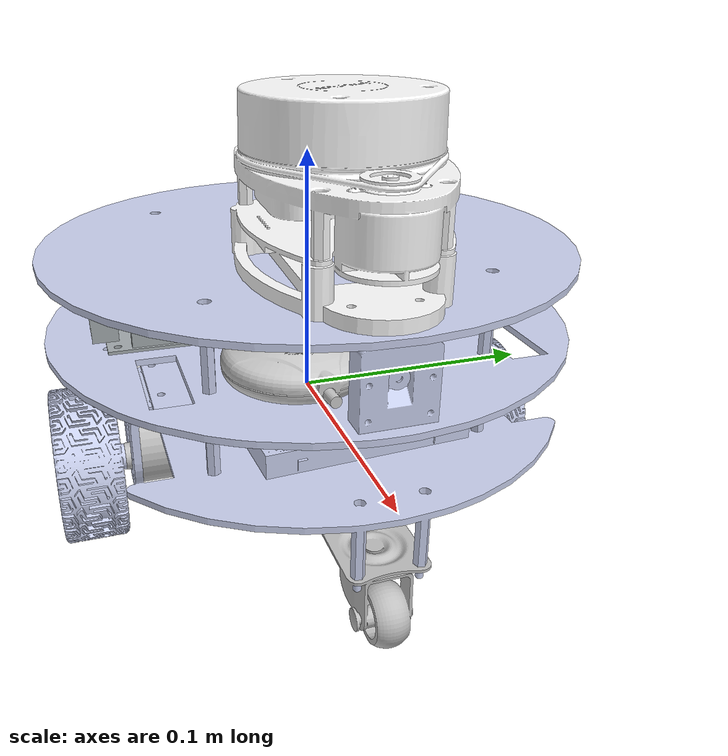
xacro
<?xml version="1.0"?>
<robot xmlns:xacro="http://www.ros.org/wiki/xacro"  name="robot">

    <xacro:arg name="use_ros2_control" default="true"/>
    <xacro:arg name="sim_mode" default="false"/>

    <xacro:include filename="robot_description.xacro" />

    <xacro:if value="$(arg use_ros2_control)">
        <xacro:include filename="ros2_control.xacro" />
    </xacro:if>

</robot>

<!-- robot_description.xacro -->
<robot name="robot" xmlns:xacro="http://www.ros.org/wiki/xacro">

  <xacro:arg name="use_ros2_control" default="true"/>

  <xacro:include filename="$(find articubot_one)/description/robot_gazebo.xacro"/>

  <link name="base_footprint"/>

  <joint name="base_footprint_joint" type="fixed">
    <parent link="base_link"/>
    <child  link="base_footprint"/>
  </joint>

  <link
    name="base_link">
    <inertial>
      <origin
        xyz="-0.00320325700418752 -0.000298446145225224 -0.00392644448822834"
        rpy="0 0 0" />
      <mass
        value="0.0892483031352582" />
      <inertia
        ixx="0.000109154524668164"
        ixy="1.2971814209627E-08"
        ixz="1.46872353030201E-21"
        iyy="0.000218725590023206"
        iyz="-1.82429330705674E-21"
        izz="0.000320633694603302" />
    </inertial>
    <visual>
      <origin
        xyz="0 0 0"
        rpy="0 0 0" />
      <geometry>
        <mesh
          filename="package://articubot_one/meshes/base_link.STL" />
      </geometry>
      <material
        name="">
        <color
          rgba="0.792156862745098 0.819607843137255 0.933333333333333 1" />
      </material>
    </visual>
    <collision>
      <origin
        xyz="0 0 0"
        rpy="0 0 0" />
      <geometry>
        <mesh
          filename="package://articubot_one/meshes/base_link.STL" />
      </geometry>
    </collision>
  </link>
  <link
    name="l298n_link">
    <inertial>
      <origin
        xyz="0.000169098511339833 0.000545238330684975 0.0049192803054399"
        rpy="0 0 0" />
      <mass
        value="0.00934758418679701" />
      <inertia
        ixx="7.85478690330871E-07"
        ixy="4.09731030308566E-11"
        ixz="-5.03579222262385E-08"
        iyy="6.95101789626241E-07"
        iyz="-1.30005939491941E-10"
        izz="1.11874278111628E-06" />
    </inertial>
    <visual>
      <origin
        xyz="0 0 0"
        rpy="0 0 0" />
      <geometry>
        <mesh
          filename="package://articubot_one/meshes/l298n_link.STL" />
      </geometry>
      <material
        name="">
        <color
          rgba="0.298039215686275 0.298039215686275 0.298039215686275 1" />
      </material>
    </visual>
    <collision>
      <origin
        xyz="0 0 0"
        rpy="0 0 0" />
      <geometry>
        <mesh
          filename="package://articubot_one/meshes/l298n_link.STL" />
      </geometry>
    </collision>
  </link>
  <joint
    name="l298n_base_joint"
    type="fixed">
    <origin
      xyz="-0.0123610130121511 0.00695937246571647 0.0015"
      rpy="0 0 0" />
    <parent
      link="base_link" />
    <child
      link="l298n_link" />
    <axis
      xyz="0 0 0" />
  </joint>
  <link
    name="battery_link">
    <inertial>
      <origin
        xyz="0 -4.55364912443912E-18 -0.01"
        rpy="0 0 0" />
      <mass
        value="0.0809999999999999" />
      <inertia
        ixx="5.73748819135092E-05"
        ixy="-6.95864226468309E-08"
        ixz="-3.22231335207523E-22"
        iyy="1.63688680864907E-05"
        iyz="-4.80752750101142E-22"
        izz="6.83437499999999E-05" />
    </inertial>
    <visual>
      <origin
        xyz="0 0 0"
        rpy="0 0 0" />
      <geometry>
        <mesh
          filename="package://articubot_one/meshes/battery_link.STL" />
      </geometry>
      <material
        name="">
        <color
          rgba="0.792156862745098 0.819607843137255 0.933333333333333 1" />
      </material>
    </visual>
    <collision>
      <origin
        xyz="0 0 0"
        rpy="0 0 0" />
      <geometry>
        <mesh
          filename="package://articubot_one/meshes/battery_link.STL" />
      </geometry>
    </collision>
  </link>
  <joint
    name="battery_base_joint"
    type="fixed">
    <origin
      xyz="-0.0666794683951733 -0.000704762623241084 0.0207804882701803"
      rpy="0 0 0" />
    <parent
      link="base_link" />
    <child
      link="battery_link" />
    <axis
      xyz="0 0 0" />
  </joint>
  <link
    name="breadboard_link">
    <inertial>
      <origin
        xyz="2.54085570164306E-05 6.79800800549412E-05 -0.00185881237739154"
        rpy="0 0 0" />
      <mass
        value="0.0405248438276165" />
      <inertia
        ixx="2.28927792008825E-05"
        ixy="8.1309496127054E-07"
        ixz="1.96137669702015E-09"
        iyy="1.06226845728484E-05"
        iyz="5.26439408629436E-09"
        izz="3.30841839162112E-05" />
    </inertial>
    <visual>
      <origin
        xyz="0 0 0"
        rpy="0 0 0" />
      <geometry>
        <mesh
          filename="package://articubot_one/meshes/breadboard_link.STL" />
      </geometry>
      <material
        name="">
        <color
          rgba="0.792156862745098 0.819607843137255 0.933333333333333 1" />
      </material>
    </visual>
    <collision>
      <origin
        xyz="0 0 0"
        rpy="0 0 0" />
      <geometry>
        <mesh
          filename="package://articubot_one/meshes/breadboard_link.STL" />
      </geometry>
    </collision>
  </link>
  <joint
    name="breadboard_base_joint"
    type="fixed">
    <origin
      xyz="0.0385665977247256 0.00251415021513075 0.0065"
      rpy="0 0 0" />
    <parent
      link="base_link" />
    <child
      link="breadboard_link" />
    <axis
      xyz="0 0 0" />
  </joint>
  <link
    name="caster_wheel">
    <inertial>
      <origin
        xyz="-0.00447345380989483 -0.000119420370600013 0.00781541652286213"
        rpy="0 0 0" />
      <mass
        value="0.00767065627431185" />
      <inertia
        ixx="5.42086213888875E-07"
        ixy="-8.19443298689264E-10"
        ixz="3.72180847716744E-08"
        iyy="6.49223491107749E-07"
        iyz="1.38929090263359E-09"
        izz="7.19656805256265E-07" />
    </inertial>
    <visual>
      <origin
        xyz="0 0 0"
        rpy="0 0 0" />
      <geometry>
        <mesh
          filename="package://articubot_one/meshes/caster_wheel_link.STL" />
      </geometry>
      <material
        name="">
        <color
          rgba="0.749019607843137 0.749019607843137 0.749019607843137 1" />
      </material>
    </visual>
    <collision>
      <origin
        xyz="0 0 0"
        rpy="0 0 0" />
      <geometry>
        <mesh
          filename="package://articubot_one/meshes/caster_wheel_link.STL" />
      </geometry>
    </collision>
  </link>
  <joint
    name="caster_wheel_joint"
    type="fixed">
    <origin
      xyz="0.088691601915541 0.00198616178671093 -0.053412434610445"
      rpy="0 0 0" />
    <parent
      link="base_link" />
    <child
      link="caster_wheel" />
    <axis
      xyz="0 0 0" />
  </joint>
  <link
    name="right_motor_link">
    <inertial>
      <origin
        xyz="0.000297765452880801 0.0281812760335359 0.00528964427045586"
        rpy="0 0 0" />
      <mass
        value="0.0205874900896007" />
      <inertia
        ixx="2.06830029363304E-06"
        ixy="-1.05095642262061E-09"
        ixz="4.47396094227775E-10"
        iyy="2.81288432801385E-06"
        iyz="1.36744079403221E-08"
        izz="2.09427038351121E-06" />
    </inertial>
    <visual>
      <origin
        xyz="0 0 0"
        rpy="0 0 0" />
      <geometry>
        <mesh
          filename="package://articubot_one/meshes/right_motor_link.STL" />
      </geometry>
      <material
        name="">
        <color
          rgba="0.752941176470588 0.752941176470588 0.752941176470588 1" />
      </material>
    </visual>
    <collision>
      <origin
        xyz="0 0 0"
        rpy="0 0 0" />
      <geometry>
        <mesh
          filename="package://articubot_one/meshes/right_motor_link.STL" />
      </geometry>
    </collision>
  </link>
  <joint
    name="right_motor_base_joint"
    type="fixed">
    <origin
      xyz="-0.0228741209404848 -0.0833732780510924 -0.0361924178428824"
      rpy="0 0 0" />
    <parent
      link="base_link" />
    <child
      link="right_motor_link" />
    <axis
      xyz="0 -0.231802038539526 -0.972762979830606" />
  </joint>
  <link
    name="right_wheel">
    <inertial>
      <origin
        xyz="-1.08063294423921E-10 0.00153990775115263 -8.02317878800807E-10"
        rpy="0 0 0" />
      <mass
        value="0.0351748276981352" />
      <inertia
        ixx="1.52375599421655E-05"
        ixy="1.81424611015011E-14"
        ixz="2.51576707694622E-10"
        iyy="2.57858861550239E-05"
        iyz="7.82569139235633E-14"
        izz="1.52367025832082E-05" />
    </inertial>
    <visual>
      <origin
        xyz="0 0 0"
        rpy="0 0 0" />
      <geometry>
        <mesh
          filename="package://articubot_one/meshes/right_wheel_link.STL" />
      </geometry>
      <material
        name="">
        <color
          rgba="0.792156862745098 0.819607843137255 0.933333333333333 1" />
      </material>
    </visual>
    <collision>
      <origin
        xyz="0 0 0"
        rpy="0 0 0" />
      <geometry>
        <mesh
          filename="package://articubot_one/meshes/right_wheel_link.STL" />
      </geometry>
    </collision>
  </link>
  <joint
    name="right_wheel_joint"
    type="continuous">
    <origin
      xyz="0.000303221130150119 -0.0132900762912283 -0.000108151634331158"
      rpy="0 0 0" />
    <parent
      link="right_motor_link" />
    <child
      link="right_wheel" />
    <axis
      xyz="0 -1 0" />
    <limit
      effort="5"
      velocity="10" />
    <dynamics
      damping="0.05"
      friction="0.5" />
  </joint>
  <link
    name="left_motor_link">
    <inertial>
      <origin
        xyz="-0.000278049801986067 -0.0281812758882611 0.00529071724926697"
        rpy="0 0 0" />
      <mass
        value="0.0205874900055612" />
      <inertia
        ixx="2.06829731916165E-06"
        ixy="-1.10191126091655E-09"
        ixz="-3.50598317072023E-10"
        iyy="2.81288432794566E-06"
        iyz="-1.36703962474929E-08"
        izz="2.09427335702004E-06" />
    </inertial>
    <visual>
      <origin
        xyz="0 0 0"
        rpy="0 0 0" />
      <geometry>
        <mesh
          filename="package://articubot_one/meshes/left_motor_link.STL" />
      </geometry>
      <material
        name="">
        <color
          rgba="0.752941176470588 0.752941176470588 0.752941176470588 1" />
      </material>
    </visual>
    <collision>
      <origin
        xyz="0 0 0"
        rpy="0 0 0" />
      <geometry>
        <mesh
          filename="package://articubot_one/meshes/left_motor_link.STL" />
      </geometry>
    </collision>
  </link>
  <joint
    name="left_motor_base_joint"
    type="fixed">
    <origin
      xyz="-0.022117 0.080404 -0.036222"
      rpy="0 0 0" />
    <parent
      link="base_link" />
    <child
      link="left_motor_link" />
    <axis
      xyz="0 0 0" />
  </joint>
  <link
    name="left_wheel">
    <inertial>
      <origin
        xyz="0.000150054037202269 -0.00153990775115259 -2.8837449253076E-05"
        rpy="0 0 0" />
      <mass
        value="0.0351748276981349" />
      <inertia
        ixx="1.52376179843975E-05"
        ixy="4.5044176570597E-14"
        ixz="1.00791426138772E-10"
        iyy="2.57858861550238E-05"
        iyz="-6.65155117178948E-14"
        izz="1.52366445409759E-05" />
    </inertial>
    <visual>
      <origin
        xyz="0 0 0"
        rpy="0 0 0" />
      <geometry>
        <mesh
          filename="package://articubot_one/meshes/left_wheel_link.STL" />
      </geometry>
      <material
        name="">
        <color
          rgba="0.792156862745098 0.819607843137255 0.933333333333333 1" />
      </material>
    </visual>
    <collision>
      <origin
        xyz="0 0 0"
        rpy="0 0 0" />
      <geometry>
        <mesh
          filename="package://articubot_one/meshes/left_wheel_link.STL" />
      </geometry>
    </collision>
  </link>
  <joint
    name="left_wheel_joint"
    type="continuous">
    <origin
      xyz="-0.00045368 0.01329 -7.8184E-05"
      rpy="0 0 0" />
    <parent
      link="left_motor_link" />
    <child
      link="left_wheel" />
    <axis
      xyz="0 1 0" />
    <limit
      effort="5"
      velocity="10" />
    <dynamics
      damping="0.05"
      friction="0.5" />
  </joint>
  <link
    name="middle_plate_link">
    <inertial>
      <origin
        xyz="4.88811683210929E-05 -1.30900048760936E-05 -0.000948246606824063"
        rpy="0 0 0" />
      <mass
        value="0.0857183442392598" />
      <inertia
        ixx="0.000227880621852022"
        ixy="8.6322431396159E-08"
        ixz="3.91514530017384E-23"
        iyy="0.000234129974674246"
        iyz="5.42023560988044E-20"
        izz="0.000461587423467616" />
    </inertial>
    <visual>
      <origin
        xyz="0 0 0"
        rpy="0 0 0" />
      <geometry>
        <mesh
          filename="package://articubot_one/meshes/middle_plate_link.STL" />
      </geometry>
      <material
        name="">
        <color
          rgba="0.792156862745098 0.819607843137255 0.933333333333333 1" />
      </material>
    </visual>
    <collision>
      <origin
        xyz="0 0 0"
        rpy="0 0 0" />
      <geometry>
        <mesh
          filename="package://articubot_one/meshes/middle_plate_link.STL" />
      </geometry>
    </collision>
  </link>
  <joint
    name="middle_plate_base_joint"
    type="fixed">
    <origin
      xyz="-0.00104252461223194 -0.000393914591046342 0.0325"
      rpy="0 0 0" />
    <parent
      link="base_link" />
    <child
      link="middle_plate_link" />
    <axis
      xyz="0 0 0" />
  </joint>
  <link
    name="gps_link">
    <inertial>
      <origin
        xyz="0.000205587359735179 0.000494490448820679 -0.00808598411913566"
        rpy="0 0 0" />
      <mass
        value="0.027265077555228" />
      <inertia
        ixx="3.55768270457603E-06"
        ixy="-2.25053338463241E-08"
        ixz="-1.02075947119124E-08"
        iyy="3.67985889324419E-06"
        iyz="-6.43072357228308E-11"
        izz="7.0613577688273E-06" />
    </inertial>
    <visual>
      <origin
        xyz="0 0 0"
        rpy="0 0 0" />
      <geometry>
        <mesh
          filename="package://articubot_one/meshes/gps_link.STL" />
      </geometry>
      <material
        name="">
        <color
          rgba="0.792156862745098 0.792156862745098 0.792156862745098 1" />
      </material>
    </visual>
    <collision>
      <origin
        xyz="0 0 0"
        rpy="0 0 0" />
      <geometry>
        <mesh
          filename="package://articubot_one/meshes/gps_link.STL" />
      </geometry>
    </collision>
  </link>
  <joint
    name="gps_joint"
    type="fixed">
    <origin
      xyz="0.0555017453081459 -0.0203907709577616 0.0155386585309423"
      rpy="0 0 0" />
    <parent
      link="middle_plate_link" />
    <child
      link="gps_link" />
    <axis
      xyz="0 0 0" />
  </joint>
  <link
    name="imu_link">
    <inertial>
      <origin
        xyz="2.41793317780209E-05 9.13358821340998E-05 -0.000722838542999628"
        rpy="0 0 0" />
      <mass
        value="0.000643345664100742" />
      <inertia
        ixx="3.1658416024106E-08"
        ixy="-9.53807950409592E-10"
        ixz="-4.01815367604069E-14"
        iyy="1.1876962099553E-08"
        iyz="2.42975815719123E-16"
        izz="4.32605970999116E-08" />
    </inertial>
    <visual>
      <origin
        xyz="0 0 0"
        rpy="0 0 0" />
      <geometry>
        <mesh
          filename="package://articubot_one/meshes/imu_link.STL" />
      </geometry>
      <material
        name="">
        <color
          rgba="0.8 0.8 0.8 1" />
      </material>
    </visual>
    <collision>
      <origin
        xyz="0 0 0"
        rpy="0 0 0" />
      <geometry>
        <mesh
          filename="package://articubot_one/meshes/imu_link.STL" />
      </geometry>
    </collision>
  </link>
  <joint
    name="imu_joint"
    type="fixed">
    <origin
      xyz="0.0140762751422641 -0.0174782655460734 0.00159999999999989"
      rpy="0 0 0" />
    <parent
      link="middle_plate_link" />
    <child
      link="imu_link" />
  </joint>
  <link
    name="stepdown_transformer_link">
    <inertial>
      <origin
        xyz="-0.00515278704990857 0.000129594629179122 0.00747541785978453"
        rpy="0 0 0" />
      <mass
        value="0.0207439946906552" />
      <inertia
        ixx="3.63978856898092E-06"
        ixy="1.91040837792053E-08"
        ixz="9.44854567351925E-08"
        iyy="4.74812985672559E-06"
        iyz="6.28562518088611E-10"
        izz="6.85499598766887E-06" />
    </inertial>
    <visual>
      <origin
        xyz="0 0 0"
        rpy="0 0 0" />
      <geometry>
        <mesh
          filename="package://articubot_one/meshes/stepdown_transformer_link.STL" />
      </geometry>
      <material
        name="">
        <color
          rgba="0.63921568627451 0.666666666666667 0.67843137254902 1" />
      </material>
    </visual>
    <collision>
      <origin
        xyz="0 0 0"
        rpy="0 0 0" />
      <geometry>
        <mesh
          filename="package://articubot_one/meshes/stepdown_transformer_link.STL" />
      </geometry>
    </collision>
  </link>
  <joint
    name="stepdown_transformer_joint"
    type="fixed">
    <origin
      xyz="-0.0112602244471607 -0.0641723109416367 0.00125000000000004"
      rpy="0 0 0" />
    <parent
      link="middle_plate_link" />
    <child
      link="stepdown_transformer_link" />
  </joint>
  <link
    name="pi_link">
    <inertial>
      <origin
        xyz="-0.00833131724617609 -0.000121983920831466 0.00190958002036774"
        rpy="0 0 0" />
      <mass
        value="0.0297680028867412" />
      <inertia
        ixx="4.8899211335597E-06"
        ixy="4.05303996781405E-07"
        ixz="6.22126654382502E-09"
        iyy="1.10028893674502E-05"
        iyz="-2.60891352590171E-10"
        izz="1.55672058021792E-05" />
    </inertial>
    <visual>
      <origin
        xyz="0 0 0"
        rpy="0 0 0" />
      <geometry>
        <mesh
          filename="package://articubot_one/meshes/pi_link.STL" />
      </geometry>
      <material
        name="">
        <color
          rgba="0.752941176470588 0.752941176470588 0.752941176470588 1" />
      </material>
    </visual>
    <collision>
      <origin
        xyz="0 0 0"
        rpy="0 0 0" />
      <geometry>
        <mesh
          filename="package://articubot_one/meshes/pi_link.STL" />
      </geometry>
    </collision>
  </link>
  <joint
    name="pi_joint"
    type="fixed">
    <origin
      xyz="-0.0484616129800413 0.00546446474816956 0.00159999999999999"
      rpy="0 0 0" />
    <parent
      link="middle_plate_link" />
    <child
      link="pi_link" />
  </joint>
  <link
    name="camera_holder_link">
    <inertial>
      <origin
        xyz="0.00412254197013728 5.27493017092365E-05 0.000251425803988507"
        rpy="0 0 0" />
      <mass
        value="0.00490538765593815" />
      <inertia
        ixx="7.07982552904016E-07"
        ixy="-1.37364671777556E-10"
        ixz="2.33737278992667E-09"
        iyy="3.94795076344746E-07"
        iyz="-9.52102096175175E-10"
        izz="3.66263018633928E-07" />
    </inertial>
    <visual>
      <origin
        xyz="0 0 0"
        rpy="0 0 0" />
      <geometry>
        <mesh
          filename="package://articubot_one/meshes/camera_holder_link.STL" />
      </geometry>
      <material
        name="">
        <color
          rgba="0.792156862745098 0.819607843137255 0.933333333333333 1" />
      </material>
    </visual>
    <collision>
      <origin
        xyz="0 0 0"
        rpy="0 0 0" />
      <geometry>
        <mesh
          filename="package://articubot_one/meshes/camera_holder_link.STL" />
      </geometry>
    </collision>
  </link>
  <joint
    name="camer_holder_joint"
    type="fixed">
    <origin
      xyz="0.0940612101025958 -0.00100305634670251 0.013844197995128"
      rpy="0 0 0" />
    <parent
      link="middle_plate_link" />
    <child
      link="camera_holder_link" />
    <axis
      xyz="0 0 0" />
  </joint>
  <link
    name="camera_link">
    <inertial>
      <origin
        xyz="0.00138005283916168 3.46944695195361E-18 0.000773598457879651"
        rpy="0 0 0" />
      <mass
        value="0.000863489289882238" />
      <inertia
        ixx="6.06578695064098E-08"
        ixy="5.28037122662165E-23"
        ixz="5.42147624846116E-24"
        iyy="2.96818781080781E-08"
        iyz="1.22342113535773E-24"
        izz="3.14178044622894E-08" />
    </inertial>
    <visual>
      <origin
        xyz="0 0 0"
        rpy="0 0 0" />
      <geometry>
        <mesh
          filename="package://articubot_one/meshes/pi_camera_link.STL" />
      </geometry>
      <material
        name="">
        <color
          rgba="0.792156862745098 0.819607843137255 0.933333333333333 1" />
      </material>
    </visual>
    <collision>
      <origin
        xyz="0 0 0"
        rpy="0 0 0" />
      <geometry>
        <mesh
          filename="package://articubot_one/meshes/pi_camera_link.STL" />
      </geometry>
    </collision>
  </link>
  <joint
    name="pi_camera_holder_joint"
    type="fixed">
    <origin
      xyz="0 0 0"
      rpy="0 0 0" />
    <parent
      link="camera_holder_link" />
    <child
      link="camera_link" />
    <axis
      xyz="0 0 0" />
  </joint>
  <link
    name="upper_plate_link">
    <inertial>
      <origin
        xyz="-1.0842021724855E-19 8.23993651088983E-18 -0.00125"
        rpy="0 0 0" />
      <mass
        value="0.0847596100207434" />
      <inertia
        ixx="0.000241134167293892"
        ixy="7.45077333445771E-08"
        ixz="8.61692078228358E-20"
        iyy="0.00023922484713976"
        iyz="9.00545094827975E-21"
        izz="0.000480270723173214" />
    </inertial>
    <visual>
      <origin
        xyz="0 0 0"
        rpy="0 0 0" />
      <geometry>
        <mesh
          filename="package://articubot_one/meshes/upper_plate_link.STL" />
      </geometry>
      <material
        name="">
        <color
          rgba="0.792156862745098 0.819607843137255 0.933333333333333 1" />
      </material>
    </visual>
    <collision>
      <origin
        xyz="0 0 0"
        rpy="0 0 0" />
      <geometry>
        <mesh
          filename="package://articubot_one/meshes/upper_plate_link.STL" />
      </geometry>
    </collision>
  </link>
  <joint
    name="upper_plate_middle_plate_joint"
    type="fixed">
    <origin
      xyz="0.00230928651960102 -2.0122890774747E-05 0.0325000000000001"
      rpy="0 0 0" />
    <parent
      link="middle_plate_link" />
    <child
      link="upper_plate_link" />
    <axis
      xyz="0 0 0" />
  </joint>
  <link
    name="laser_frame">
    <inertial>
      <origin
        xyz="-0.000690542977645016 0.000151100557272272 0.0221303000298629"
        rpy="0 0 0" />
      <mass
        value="0.0941042363960605" />
      <inertia
        ixx="2.79168687154737E-05"
        ixy="3.53845575169212E-07"
        ixz="-3.34606763071825E-07"
        iyy="4.43450865223789E-05"
        iyz="3.31536423431173E-08"
        izz="6.94754491982944E-05" />
    </inertial>
    <visual>
      <origin
        xyz="0 0 0"
        rpy="0 0 0" />
      <geometry>
        <mesh
          filename="package://articubot_one/meshes/lidar_link.STL" />
      </geometry>
      <material
        name="">
        <color
          rgba="1 1 1 1" />
      </material>
    </visual>
    <collision>
      <origin
        xyz="0 0 0"
        rpy="0 0 0" />
      <geometry>
        <mesh
          filename="package://articubot_one/meshes/lidar_link.STL" />
      </geometry>
    </collision>
  </link>
  <joint
    name="lidar_joint"
    type="fixed">
    <origin
      xyz="0.0507436025632524 -0.000585769961176994 0.00499999999999992"
      rpy="0 0 0" />
    <parent
      link="upper_plate_link" />
    <child
      link="laser_frame" />
  </joint>

  <joint name="camera_optical_joint" type="fixed">
    <parent link="camera_link"/>
    <child link="camera_link_optical"/>
    <origin xyz="0 0 0" rpy="${-pi/2} 0 ${-pi/2}"/>
  </joint>
  <link name="camera_link_optical"/>

</robot>
